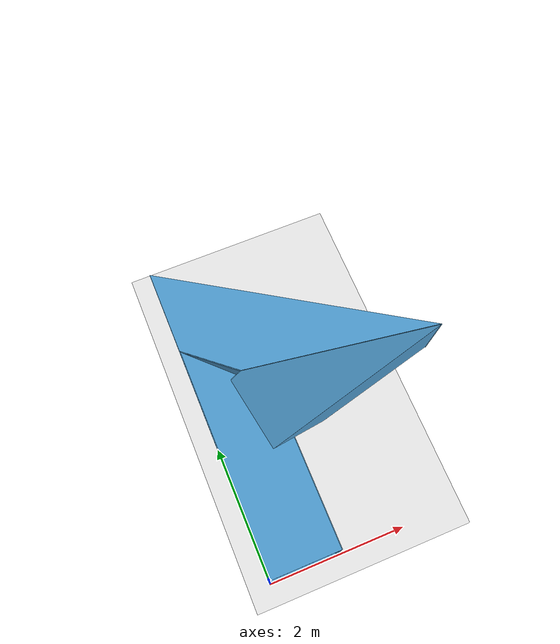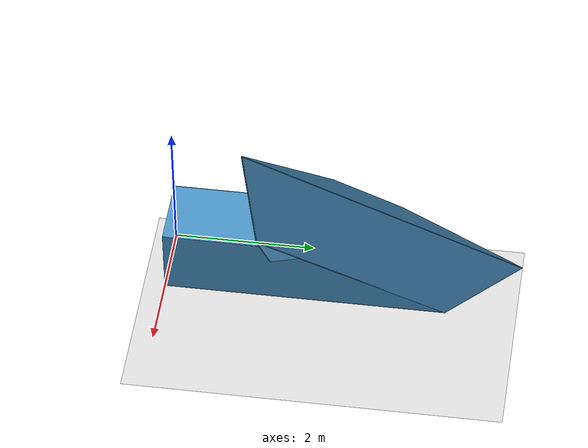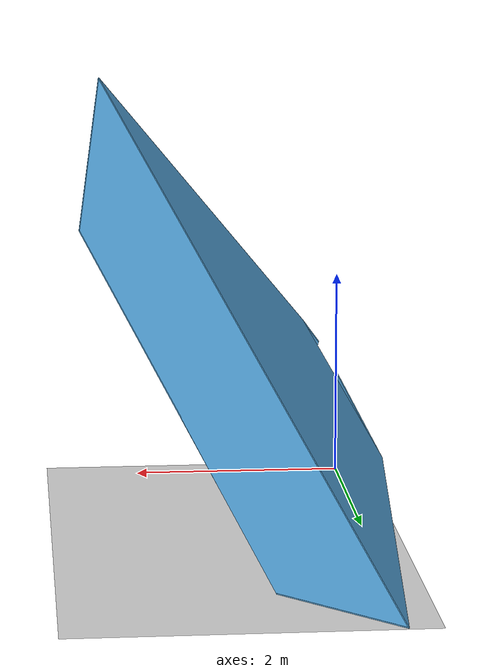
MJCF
<mujoco model="zipper_tube">
   <compiler meshdir = '../stls/'/>
<asset>
    <mesh name="panel_s0_f0" file="panel_s0_f0.stl"/>
    <mesh name="panel_s0_f1" file="panel_s0_f1.stl"/>
    <mesh name="panel_s0_f2" file="panel_s0_f2.stl"/>
    <mesh name="panel_s0_f3" file="panel_s0_f3.stl"/>
    <mesh name="panel_s1_f0" file="panel_s1_f0.stl"/>
    <mesh name="panel_s1_f1" file="panel_s1_f1.stl"/>
    <mesh name="panel_s1_f2" file="panel_s1_f2.stl"/>
    <mesh name="panel_s1_f3" file="panel_s1_f3.stl"/>
    <mesh name="panel_s2_f0" file="panel_s2_f0.stl"/>
    <mesh name="panel_s2_f1" file="panel_s2_f1.stl"/>
    <mesh name="panel_s2_f2" file="panel_s2_f2.stl"/>
    <mesh name="panel_s2_f3" file="panel_s2_f3.stl"/>
</asset>
  <option timestep="0.002000" gravity="0.000000 0.000000 -9.810000"/>
  <worldbody>
    <light pos="0 5 5" dir="0 -1 -1"/>
    <geom name="floor" type="plane" size="5.000000 5.000000 1.000000" rgba="0.9 0.9 0.9 1" contype="2" conaffinity="1"/>
    <body name="tube_root" pos="0 0 0">
      <body name="segment0_panel0" pos="0.500000 2.250000 0.000000" quat="1.000000 0.000000 -0.000000 -0.000000">
        <geom name="segment0_panel0_geom" type="mesh" mesh="panel_s0_f0" pos="0 0 0" quat="1 0 0 0" rgba="0.3 0.6 0.8 1" mass="1.000000" contype="1" conaffinity="2"/>
        <body name="segment0_panel1" pos="0.500000 -0.683013 0.500000" quat="0.707107 0.000000 -0.707107 0.000000">
          <joint name="segment0_hinge1" type="hinge" pos="-0.500000 0.433013 0.000000" axis="-0.000000 1.000000 0.000000"/>
          <geom name="segment0_panel1_geom" type="mesh" mesh="panel_s0_f1" pos="0 0 0" quat="1 0 0 0" rgba="0.3 0.6 0.8 1" mass="1.000000" contype="1" conaffinity="2"/>
          <body name="segment0_panel2" pos="0.500000 -0.183013 0.500000" quat="0.707107 -0.000000 -0.707107 0.000000">
            <joint name="segment0_hinge2" type="hinge" pos="-0.500000 -0.250000 0.000000" axis="0.000000 1.000000 0.000000"/>
            <geom name="segment0_panel2_geom" type="mesh" mesh="panel_s0_f2" pos="0 0 0" quat="1 0 0 0" rgba="0.3 0.6 0.8 1" mass="1.000000" contype="1" conaffinity="2"/>
            <body name="segment0_panel3" pos="0.500000 0.683013 0.500000" quat="0.500000 0.500000 0.500000 0.500000">
              <joint name="segment0_hinge3" type="hinge" pos="-0.433013 -0.500000 0.000000" axis="1.000000 0.000000 0.000000"/>
              <geom name="segment0_panel3_geom" type="mesh" mesh="panel_s0_f3" pos="0 0 0" quat="1 0 0 0" rgba="0.3 0.6 0.8 1" mass="1.000000" contype="1" conaffinity="2"/>
            </body>
          </body>
        </body>
      </body>

      <body name="segment1_panel0" pos="1.500000 3.000000 1.732051" quat="0.584313 0.715634 -0.296425 -0.242030">
        <geom name="segment1_panel0_geom" type="mesh" mesh="panel_s1_f0" pos="0 0 0" quat="1 0 0 0" rgba="0.3 0.6 0.8 1" mass="1.000000" contype="1" conaffinity="2"/>
        <body name="segment1_panel1" pos="0.174050 -0.533057 0.500000" quat="0.701057 -0.560986 -0.430459 0.092296">
          <joint name="segment1_hinge1" type="hinge" pos="-0.030154 0.559941 -0.000000" axis="0.866025 0.500000 0.000000"/>
          <geom name="segment1_panel1_geom" type="mesh" mesh="panel_s1_f1" pos="0 0 0" quat="1 0 0 0" rgba="0.3 0.6 0.8 1" mass="1.000000" contype="1" conaffinity="2"/>
          <body name="segment1_panel2" pos="0.030154 -0.559941 0.500000" quat="0.092296 0.430459 -0.560986 0.701057">
            <joint name="segment1_hinge2" type="hinge" pos="-0.353553 0.353553 0.000000" axis="0.707107 0.707107 -0.000000"/>
            <geom name="segment1_panel2_geom" type="mesh" mesh="panel_s1_f2" pos="0 0 0" quat="1 0 0 0" rgba="0.3 0.6 0.8 1" mass="1.000000" contype="1" conaffinity="2"/>
            <body name="segment1_panel3" pos="0.174050 -0.533057 -0.500000" quat="-0.270598 0.270598 -0.653281 0.653281">
              <joint name="segment1_hinge3" type="hinge" pos="-0.253857 -0.500000 0.000000" axis="1.000000 0.000000 0.000000"/>
              <geom name="segment1_panel3_geom" type="mesh" mesh="panel_s1_f3" pos="0 0 0" quat="1 0 0 0" rgba="0.3 0.6 0.8 1" mass="1.000000" contype="1" conaffinity="2"/>
            </body>
          </body>
        </body>
      </body>

      <body name="segment2_panel0" pos="1.763446 1.489810 2.454209" quat="0.525521 -0.542714 0.383865 0.530977">
        <geom name="segment2_panel0_geom" type="mesh" mesh="panel_s2_f0" pos="0 0 0" quat="1 0 0 0" rgba="0.3 0.6 0.8 1" mass="1.000000" contype="1" conaffinity="2"/>
        <body name="segment2_panel1" pos="1.016020 0.308913 0.500000" quat="0.690346 -0.596368 -0.379928 0.153046">
          <joint name="segment2_hinge1" type="hinge" pos="-0.816456 0.234923 0.000000" axis="0.939693 0.342020 0.000000"/>
          <geom name="segment2_panel1_geom" type="mesh" mesh="panel_s2_f1" pos="0 0 0" quat="1 0 0 0" rgba="0.3 0.6 0.8 1" mass="1.000000" contype="1" conaffinity="2"/>
          <body name="segment2_panel2" pos="0.581533 -0.320428 0.500000" quat="0.153046 0.379928 -0.596368 0.690346">
            <joint name="segment2_hinge2" type="hinge" pos="-0.530330 0.176777 -0.000000" axis="0.707107 0.707107 -0.000000"/>
            <geom name="segment2_panel2_geom" type="mesh" mesh="panel_s2_f2" pos="0 0 0" quat="1 0 0 0" rgba="0.3 0.6 0.8 1" mass="1.000000" contype="1" conaffinity="2"/>
            <body name="segment2_panel3" pos="1.016020 0.308913 -0.500000" quat="0.270598 -0.270598 0.653281 -0.653281">
              <joint name="segment2_hinge3" type="hinge" pos="0.686869 -0.500000 -0.000000" axis="1.000000 0.000000 0.000000"/>
              <geom name="segment2_panel3_geom" type="mesh" mesh="panel_s2_f3" pos="0 0 0" quat="1 0 0 0" rgba="0.3 0.6 0.8 1" mass="1.000000" contype="1" conaffinity="2"/>
            </body>
          </body>
        </body>
      </body>

    </body>
  </worldbody>
  <equality>
    <connect name="segment0_close" body1="segment0_panel3" body2="segment0_panel0" anchor="0.433013 0.500000 0.000000"/>
    <connect name="segment1_close" body1="segment1_panel3" body2="segment1_panel0" anchor="0.253857 0.500000 0.000000"/>
    <connect name="segment2_close" body1="segment2_panel3" body2="segment2_panel0" anchor="-0.686869 0.500000 0.000000"/>
    <connect name="segment0_to_1_panel0" body1="segment0_panel0" body2="segment1_panel0" anchor="-0.000000 2.250000 0.000000"/>
    <connect name="segment0_to_1_panel1" body1="segment0_panel1" body2="segment1_panel1" anchor="-0.000000 1.566987 0.000000"/>
    <connect name="segment0_to_1_panel2" body1="segment0_panel2" body2="segment1_panel2" anchor="0.000000 1.383975 0.000000"/>
    <connect name="segment0_to_1_panel3" body1="segment0_panel3" body2="segment1_panel3" anchor="2.066987 0.000000 0.000000"/>
    <connect name="segment1_to_2_panel0" body1="segment1_panel0" body2="segment2_panel0" anchor="1.767767 1.767767 0.000000"/>
    <connect name="segment1_to_2_panel1" body1="segment1_panel1" body2="segment2_panel1" anchor="0.762204 0.440059 0.000000"/>
    <connect name="segment1_to_2_panel2" body1="segment1_panel2" body2="segment2_panel2" anchor="-0.184015 -0.184015 0.000000"/>
    <connect name="segment1_to_2_panel3" body1="segment1_panel3" body2="segment2_panel3" anchor="1.880118 0.000000 0.000000"/>
  </equality>
</mujoco>
